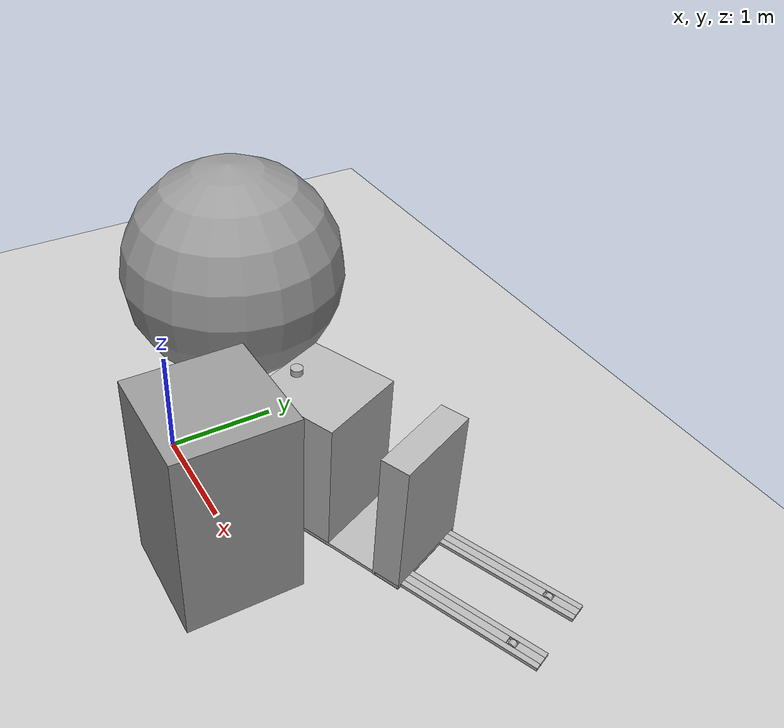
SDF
<sdf version="1.7">
 <world name="default">
  <light name="sun" type="directional">
   <pose>0 0 10 0 -0 0</pose>
   <diffuse>0.8 0.8 0.8 1</diffuse>
   <specular>0.2 0.2 0.2 1</specular>
   <attenuation>
    <range>1000</range>
    <constant>0.9</constant>
    <linear>0.01</linear>
    <quadratic>0.001</quadratic>
   </attenuation>
   <direction>-0.5 0.1 -0.9</direction>
   <spot><inner_angle>0</inner_angle><outer_angle>0</outer_angle><falloff>0</falloff></spot>
  </light>
  <model name="ground_plane">
   <static>1</static>
   <link name="link">
    <collision name="collision">
     <geometry><plane><normal>0 0 1</normal><size>100 100</size></plane></geometry>
     <surface><friction><ode><mu>100</mu><mu2>50</mu2></ode></friction></surface>
    </collision>
    <visual name="visual">
     <cast_shadows>0</cast_shadows>
     <geometry><plane><normal>0 0 1</normal><size>100 100</size></plane></geometry>
     <material>
      <script><uri>file://media/materials/scripts/gazebo.material</uri><name>Gazebo/Grey</name></script>
     </material>
    </visual>
   </link>
  </model>
  <gravity>0 0 -9.8</gravity>
  <magnetic_field>6e-06 2.3e-05 -4.2e-05</magnetic_field>
  <atmosphere type="adiabatic"/>
  <physics type="ode">
   <max_step_size>0.001</max_step_size>
   <real_time_factor>1</real_time_factor>
   <real_time_update_rate>1000</real_time_update_rate>
  </physics>
  <scene><ambient>0.4 0.4 0.4 1</ambient><background>0.7 0.7 0.7 1</background><shadows>1</shadows></scene>
  <spherical_coordinates>
   <surface_model>EARTH_WGS84</surface_model>
   <latitude_deg>0</latitude_deg>
   <longitude_deg>0</longitude_deg>
   <elevation>0</elevation>
   <heading_deg>0</heading_deg>
  </spherical_coordinates>
  <model name="unit_box">
   <pose>1.51271 -0.181418 0.866026 5e-06 3e-06 -0.000436</pose>
   <link name="link">
    <inertial>
     <mass>1</mass>
     <inertia>
      <ixx>0.166667</ixx>
      <ixy>0</ixy>
      <ixz>0</ixz>
      <iyy>0.166667</iyy>
      <iyz>0</iyz>
      <izz>0.166667</izz>
     </inertia>
    </inertial>
    <collision name="collision"><geometry><box><size>1 1 1.73206</size></box></geometry></collision>
    <visual name="visual">
     <geometry><box><size>1 1 1.73206</size></box></geometry>
     <material>
      <script><name>Gazebo/Grey</name><uri>file://media/materials/scripts/gazebo.material</uri></script>
     </material>
    </visual>
   </link>
  </model>
  <model name="unit_sphere">
   <pose>-0.944955 1.09802 1.10283 0 -0 0</pose>
   <link name="link">
    <inertial>
     <mass>1</mass>
     <inertia><ixx>0.1</ixx><ixy>0</ixy><ixz>0</ixz><iyy>0.1</iyy><iyz>0</iyz><izz>0.1</izz></inertia>
    </inertial>
    <collision name="collision"><geometry><sphere><radius>1.10283</radius></sphere></geometry></collision>
    <visual name="visual">
     <geometry><sphere><radius>1.10283</radius></sphere></geometry>
     <material>
      <script><name>Gazebo/Grey</name><uri>file://media/materials/scripts/gazebo.material</uri></script>
     </material>
    </visual>
   </link>
  </model>
  <model name="sam_bot">
   <link name="base_link">
    <inertial>
     <pose>0.673499 4.7e-05 0.048848 1.5708 -0 1.5708</pose>
     <mass>558.76</mass>
     <inertia>
      <ixx>237.096</ixx>
      <ixy>-0.0370427</ixy>
      <ixz>-0.0387581</ixz>
      <iyy>257.36</iyy>
      <iyz>-22.1116</iyz>
      <izz>59.3764</izz>
     </inertia>
    </inertial>
    <collision name="base_link_fixed_joint_lump__basePlate_link_collision">
     <pose>1.7 0 0.005 0 -0 0</pose>
     <geometry><box><size>1.5 0.8 0.03</size></box></geometry>
    </collision>
    <collision name="base_link_fixed_joint_lump__frontCompartment_link_collision_1">
     <pose>2.05 0 0.61 0 -0 0</pose>
     <geometry><box><size>0.8 0.8 1.25</size></box></geometry>
    </collision>
    <collision name="base_link_fixed_joint_lump__rearCompartment_link_collision_2">
     <pose>1.075 0 0.61 0 -0 0</pose>
     <geometry><box><size>0.25 0.8 1.25</size></box></geometry>
    </collision>
    <collision name="base_link_fixed_joint_lump__camera_link_collision_3">
     <pose>2.45 0 1.18 0 -0 0</pose>
     <geometry><box><size>0.015 0.13 0.022</size></box></geometry>
    </collision>
    <collision name="base_link_fixed_joint_lump__front_caster_collision_4">
     <pose>2.25 0 0.045 0 -0 0</pose>
     <geometry><sphere><radius>0.1</radius></sphere></geometry>
     <surface>
      <contact><ode><kp>500000</kp><kd>1e+06</kd><min_depth>0.001</min_depth></ode></contact>
      <friction><ode><mu>0</mu><mu2>0</mu2></ode></friction>
     </surface>
    </collision>
    <collision name="base_link_fixed_joint_lump__fork1_box1_link_collision_5">
     <pose>0.35 0.34 0.005 0 -0 0</pose>
     <geometry><box><size>1.2 0.05 0.03</size></box></geometry>
    </collision>
    <collision name="base_link_fixed_joint_lump__fork1_box2_link_collision_6">
     <pose>0.35 0.22 0.005 0 -0 0</pose>
     <geometry><box><size>1.2 0.05 0.03</size></box></geometry>
    </collision>
    <collision name="base_link_fixed_joint_lump__fork1_box3_link_collision_7">
     <pose>0.495 0.28 0.005 0 -0 0</pose>
     <geometry><box><size>0.91 0.07 0.03</size></box></geometry>
    </collision>
    <collision name="base_link_fixed_joint_lump__fork1_box4_link_collision_8">
     <pose>-0.145 0.28 0.005 0 -0 0</pose>
     <geometry><box><size>0.21 0.07 0.03</size></box></geometry>
    </collision>
    <collision name="base_link_fixed_joint_lump__fork2_box1_link_collision_9">
     <pose>0.35 -0.22 0.005 0 -0 0</pose>
     <geometry><box><size>1.2 0.05 0.03</size></box></geometry>
    </collision>
    <collision name="base_link_fixed_joint_lump__fork2_box2_link_collision_10">
     <pose>0.35 -0.34 0.005 0 -0 0</pose>
     <geometry><box><size>1.2 0.05 0.03</size></box></geometry>
    </collision>
    <collision name="base_link_fixed_joint_lump__fork2_box3_link_collision_11">
     <pose>0.495 -0.28 0.005 0 -0 0</pose>
     <geometry><box><size>0.91 0.07 0.03</size></box></geometry>
    </collision>
    <collision name="base_link_fixed_joint_lump__fork2_box4_link_collision_12">
     <pose>-0.145 -0.28 0.005 0 -0 0</pose>
     <geometry><box><size>0.21 0.07 0.03</size></box></geometry>
    </collision>
    <collision name="base_link_fixed_joint_lump__imu_link_collision_13">
     <pose>2.45 0 1.08 0 -0 0</pose>
     <geometry><box><size>0.1 0.1 0.1</size></box></geometry>
    </collision>
    <collision name="base_link_fixed_joint_lump__lidar_link_collision_14">
     <pose>2.15 0.21 1.46 0 -0 0</pose>
     <geometry><cylinder><length>0.055</length><radius>0.0508</radius></cylinder></geometry>
    </collision>
    <visual name="base_link_fixed_joint_lump__basePlate_link_visual">
     <pose>1.7 0 0.005 0 -0 0</pose>
     <geometry><box><size>1.5 0.8 0.03</size></box></geometry>
    </visual>
    <visual name="base_link_fixed_joint_lump__frontCompartment_link_visual_1">
     <pose>2.05 0 0.61 0 -0 0</pose>
     <geometry><box><size>0.8 0.8 1.25</size></box></geometry>
    </visual>
    <visual name="base_link_fixed_joint_lump__rearCompartment_link_visual_2">
     <pose>1.075 0 0.61 0 -0 0</pose>
     <geometry><box><size>0.25 0.8 1.25</size></box></geometry>
    </visual>
    <visual name="base_link_fixed_joint_lump__camera_link_visual_3">
     <pose>2.45 0 1.18 0 -0 0</pose>
     <geometry><box><size>0.015 0.13 0.022</size></box></geometry>
     <material>
      <script><name>Gazebo/Grey</name><uri>file://media/materials/scripts/gazebo.material</uri></script>
     </material>
    </visual>
    <visual name="base_link_fixed_joint_lump__front_caster_visual_4">
     <pose>2.25 0 0.045 0 -0 0</pose>
     <geometry><sphere><radius>0.1</radius></sphere></geometry>
     <material>
      <script><name>Gazebo/FlatBlack</name><uri>file://media/materials/scripts/gazebo.material</uri></script>
     </material>
    </visual>
    <visual name="base_link_fixed_joint_lump__fork1_box1_link_visual_5">
     <pose>0.35 0.34 0.005 0 -0 0</pose>
     <geometry><box><size>1.2 0.05 0.03</size></box></geometry>
    </visual>
    <visual name="base_link_fixed_joint_lump__fork1_box2_link_visual_6">
     <pose>0.35 0.22 0.005 0 -0 0</pose>
     <geometry><box><size>1.2 0.05 0.03</size></box></geometry>
    </visual>
    <visual name="base_link_fixed_joint_lump__fork1_box3_link_visual_7">
     <pose>0.495 0.28 0.005 0 -0 0</pose>
     <geometry><box><size>0.91 0.07 0.03</size></box></geometry>
    </visual>
    <visual name="base_link_fixed_joint_lump__fork1_box4_link_visual_8">
     <pose>-0.145 0.28 0.005 0 -0 0</pose>
     <geometry><box><size>0.21 0.07 0.03</size></box></geometry>
    </visual>
    <visual name="base_link_fixed_joint_lump__fork2_box1_link_visual_9">
     <pose>0.35 -0.22 0.005 0 -0 0</pose>
     <geometry><box><size>1.2 0.05 0.03</size></box></geometry>
    </visual>
    <visual name="base_link_fixed_joint_lump__fork2_box2_link_visual_10">
     <pose>0.35 -0.34 0.005 0 -0 0</pose>
     <geometry><box><size>1.2 0.05 0.03</size></box></geometry>
    </visual>
    <visual name="base_link_fixed_joint_lump__fork2_box3_link_visual_11">
     <pose>0.495 -0.28 0.005 0 -0 0</pose>
     <geometry><box><size>0.91 0.07 0.03</size></box></geometry>
    </visual>
    <visual name="base_link_fixed_joint_lump__fork2_box4_link_visual_12">
     <pose>-0.145 -0.28 0.005 0 -0 0</pose>
     <geometry><box><size>0.21 0.07 0.03</size></box></geometry>
    </visual>
    <visual name="base_link_fixed_joint_lump__imu_link_visual_13">
     <pose>2.45 0 1.08 0 -0 0</pose>
     <geometry><box><size>0.1 0.1 0.1</size></box></geometry>
    </visual>
    <visual name="base_link_fixed_joint_lump__lidar_link_visual_14">
     <pose>2.15 0.21 1.46 0 -0 0</pose>
     <geometry><cylinder><length>0.055</length><radius>0.0508</radius></cylinder></geometry>
    </visual>
    <sensor name="depth_camera" type="depth">
     <visualize>0</visualize>
     <update_rate>30</update_rate>
     <camera name="camera">
      <horizontal_fov>1.0472</horizontal_fov>
      <image><width>640</width><height>480</height><format>R8G8B8</format></image>
      <clip><near>0.05</near><far>10</far></clip>
     </camera>
     <plugin name="depth_camera_controller" filename="libgazebo_ros_camera.so">
      <baseline>0.2</baseline>
      <alwaysOn>1</alwaysOn>
      <updateRate>0.0</updateRate>
      <frame_name>camera_depth_frame</frame_name>
      <pointCloudCutoff>0.5</pointCloudCutoff>
      <pointCloudCutoffMax>10.0</pointCloudCutoffMax>
      <distortionK1>0</distortionK1>
      <distortionK2>0</distortionK2>
      <distortionK3>0</distortionK3>
      <distortionT1>0</distortionT1>
      <distortionT2>0</distortionT2>
      <CxPrime>0</CxPrime>
      <Cx>0</Cx>
      <Cy>0</Cy>
      <focalLength>0</focalLength>
      <hackbaseline>0</hackbaseline>
     </plugin>
     <pose>2.45 0 1.18 0 -0 0</pose>
    </sensor>
    <sensor name="rgb_camera" type="camera">
     <update_rate>30</update_rate>
     <camera name="rgb_camera">
      <image><width>800</width><height>800</height><format>R8G8B8</format></image>
      <clip><near>0.01</near><far>50</far></clip>
      <noise><type>gaussian</type><mean>0</mean><stddev>0.007</stddev></noise>
      <horizontal_fov>1.047</horizontal_fov>
     </camera>
     <plugin name="camera_controller" filename="libgazebo_ros_camera.so">
      <alwaysOn>1</alwaysOn>
      <updateRate>30.0</updateRate>
      <cameraName>camera_front_left</cameraName>
      <imageTopicName>image_raw</imageTopicName>
      <cameraInfoTopicName>camera_info</cameraInfoTopicName>
      <frameName>rgb_camera</frameName>
      <hackBaseline>0.07</hackBaseline>
      <distortionK1>0.0</distortionK1>
      <distortionK2>0.0</distortionK2>
      <distortionK3>0.0</distortionK3>
      <distortionT1>0.0</distortionT1>
      <distortionT2>0.0</distortionT2>
     </plugin>
     <pose>2.45 0 1.18 0 -0 0</pose>
    </sensor>
    <sensor name="imu_sensor" type="imu">
     <plugin name="imu_plugin" filename="libgazebo_ros_imu_sensor.so">
      <ros><namespace>/demo</namespace><remapping>~/out:=imu</remapping></ros>
      <initial_orientation_as_reference>0</initial_orientation_as_reference>
     </plugin>
     <always_on>1</always_on>
     <update_rate>100</update_rate>
     <visualize>1</visualize>
     <imu>
      <angular_velocity>
       <x>
        <noise type="gaussian">
         <mean>0</mean>
         <stddev>0.0002</stddev>
         <bias_mean>7.5e-06</bias_mean>
         <bias_stddev>8e-07</bias_stddev>
        </noise>
       </x>
       <y>
        <noise type="gaussian">
         <mean>0</mean>
         <stddev>0.0002</stddev>
         <bias_mean>7.5e-06</bias_mean>
         <bias_stddev>8e-07</bias_stddev>
        </noise>
       </y>
       <z>
        <noise type="gaussian">
         <mean>0</mean>
         <stddev>0.0002</stddev>
         <bias_mean>7.5e-06</bias_mean>
         <bias_stddev>8e-07</bias_stddev>
        </noise>
       </z>
      </angular_velocity>
      <linear_acceleration>
       <x>
        <noise type="gaussian">
         <mean>0</mean>
         <stddev>0.017</stddev>
         <bias_mean>0.1</bias_mean>
         <bias_stddev>0.001</bias_stddev>
        </noise>
       </x>
       <y>
        <noise type="gaussian">
         <mean>0</mean>
         <stddev>0.017</stddev>
         <bias_mean>0.1</bias_mean>
         <bias_stddev>0.001</bias_stddev>
        </noise>
       </y>
       <z>
        <noise type="gaussian">
         <mean>0</mean>
         <stddev>0.017</stddev>
         <bias_mean>0.1</bias_mean>
         <bias_stddev>0.001</bias_stddev>
        </noise>
       </z>
      </linear_acceleration>
     </imu>
     <pose>2.45 0 1.08 0 -0 0</pose>
    </sensor>
    <sensor name="lidar" type="ray">
     <always_on>1</always_on>
     <visualize>0</visualize>
     <update_rate>5</update_rate>
     <ray>
      <scan>
       <horizontal>
        <samples>360</samples>
        <resolution>1</resolution>
        <min_angle>0</min_angle>
        <max_angle>6.28</max_angle>
       </horizontal>
       <vertical><samples>1</samples><min_angle>0</min_angle><max_angle>0</max_angle></vertical>
      </scan>
      <range><min>0.12</min><max>50</max><resolution>0.015</resolution></range>
      <noise><type>gaussian</type><mean>0</mean><stddev>0.01</stddev></noise>
     </ray>
     <plugin name="scan" filename="libgazebo_ros_ray_sensor.so">
      <ros><remapping>~/out:=scan</remapping></ros>
      <output_type>sensor_msgs/LaserScan</output_type>
      <frame_name>lidar_link</frame_name>
     </plugin>
     <pose>2.15 0.21 1.46 0 -0 0</pose>
    </sensor>
   </link>
   <joint name="fork1_wheel_joint" type="revolute">
    <pose relative_to="base_link">0 0.28 -0.005 0 -0 0</pose>
    <parent>base_link</parent>
    <child>fork1_wheel_link</child>
    <axis>
     <xyz>0 1 0</xyz>
     <limit><lower>-1e+16</lower><upper>1e+16</upper></limit>
     <dynamics><spring_reference>0</spring_reference><spring_stiffness>0</spring_stiffness></dynamics>
    </axis>
   </joint>
   <link name="fork1_wheel_link">
    <pose relative_to="fork1_wheel_joint">0 0 0 0 -0 0</pose>
    <inertial>
     <pose>0 0 0 1.5708 -0 0</pose>
     <mass>0.5</mass>
     <inertia>
      <ixx>0.000216667</ixx>
      <ixy>0</ixy>
      <ixz>0</ixz>
      <iyy>0.000216667</iyy>
      <iyz>0</iyz>
      <izz>0.000225</izz>
     </inertia>
    </inertial>
    <collision name="fork1_wheel_link_collision">
     <pose>0 0 0 1.5708 -0 0</pose>
     <geometry><cylinder><length>0.05</length><radius>0.03</radius></cylinder></geometry>
    </collision>
    <visual name="fork1_wheel_link_visual">
     <pose>0 0 0 1.5708 -0 0</pose>
     <geometry><cylinder><length>0.05</length><radius>0.03</radius></cylinder></geometry>
    </visual>
   </link>
   <joint name="fork2_wheel_joint" type="revolute">
    <pose relative_to="base_link">0 -0.28 -0.005 0 -0 0</pose>
    <parent>base_link</parent>
    <child>fork2_wheel_link</child>
    <axis>
     <xyz>0 1 0</xyz>
     <limit><lower>-1e+16</lower><upper>1e+16</upper></limit>
     <dynamics><spring_reference>0</spring_reference><spring_stiffness>0</spring_stiffness></dynamics>
    </axis>
   </joint>
   <link name="fork2_wheel_link">
    <pose relative_to="fork2_wheel_joint">0 0 0 0 -0 0</pose>
    <inertial>
     <pose>0 0 0 1.5708 -0 0</pose>
     <mass>0.5</mass>
     <inertia>
      <ixx>0.000216667</ixx>
      <ixy>0</ixy>
      <ixz>0</ixz>
      <iyy>0.000216667</iyy>
      <iyz>0</iyz>
      <izz>0.000225</izz>
     </inertia>
    </inertial>
    <collision name="fork2_wheel_link_collision">
     <pose>0 0 0 1.5708 -0 0</pose>
     <geometry><cylinder><length>0.05</length><radius>0.03</radius></cylinder></geometry>
    </collision>
    <visual name="fork2_wheel_link_visual">
     <pose>0 0 0 1.5708 -0 0</pose>
     <geometry><cylinder><length>0.05</length><radius>0.03</radius></cylinder></geometry>
    </visual>
   </link>
   <static>0</static>
   <plugin name="diff_drive" filename="libgazebo_ros_diff_drive.so">
    <left_joint>fork1_wheel_joint</left_joint>
    <right_joint>fork2_wheel_joint</right_joint>
    <wheel_separation>0.39</wheel_separation>
    <wheel_diameter>0.06</wheel_diameter>
    <max_wheel_torque>2e6</max_wheel_torque>
    <max_wheel_acceleration>1.0</max_wheel_acceleration>
    <publish_odom>1</publish_odom>
    <publish_odom_tf>1</publish_odom_tf>
    <publish_wheel_tf>1</publish_wheel_tf>
    <odometry_frame>odom</odometry_frame>
    <robot_base_frame>base_link</robot_base_frame>
   </plugin>
   <pose>3.15101 1.6726 0.034549 5.3e-05 -0.007375 -2.74641</pose>
  </model>
 </world>
</sdf>
